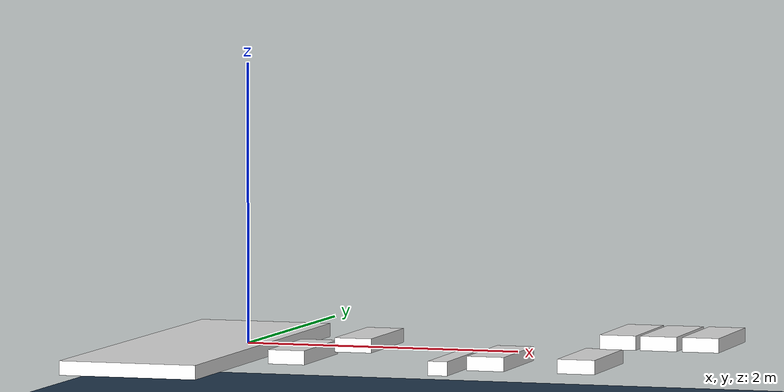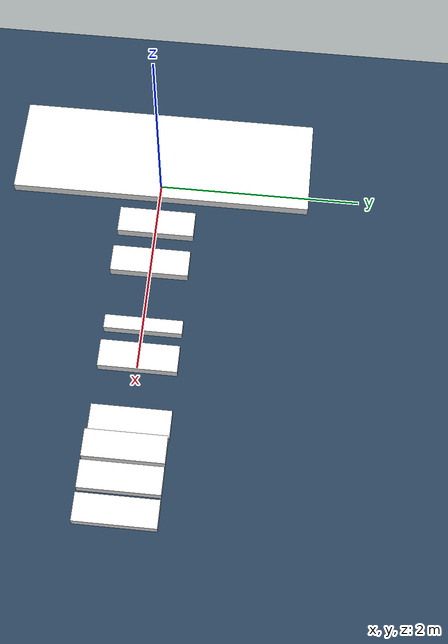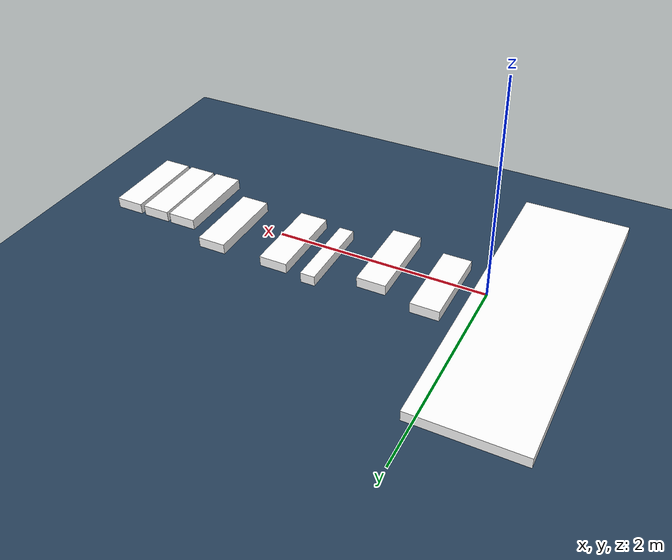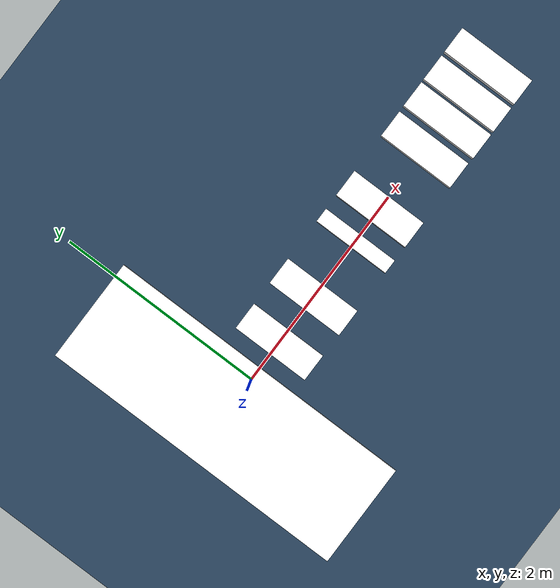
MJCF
<mujoco model="stepping_stones">
  <option gravity="0 0 -9.81"/>

  <statistic center="1.0 0.7 1.0" extent="0.8"/>

  <visual>
    <headlight diffuse="0.6 0.6 0.6" ambient="0.1 0.1 0.1" specular="0.9 0.9 0.9"/>
    <rgba haze="0.15 0.25 0.35 1"/>
    <global azimuth="-140" elevation="-20"/>
  </visual>

  <asset>
    <texture type="skybox" builtin="flat" rgb1="0 0 0" rgb2="0 0 0" width="512" height="3072"/>
    <texture type="2d" name="groundplane" builtin="checker" mark="edge" rgb1="0.2 0.3 0.4" rgb2="0.1 0.2 0.3" markrgb="0.8 0.8 0.8" width="300" height="300"/>
    <material name="groundplane" texture="groundplane" texuniform="true" texrepeat="5 5" reflectance="0.2"/>
    <material name="box_material" shininess="0.1" specular="0.5" roughness="0.3"/>
  </asset>

  <worldbody>
    <light pos="1 0 3.5" dir="0 0 -1" directional="true"/>

    <geom name="bottom" size="10  5 0.05" type="box" material="groundplane" pos= "0 0 -0.67" group="2"/>

    <geom name="startp" size="0.5 1.5 0.05" type="box" material="box_material" pos= "-0.375 0 -0.05" group="2"/>

    <geom name="stone1"     size="0.135 0.38 0.05" type="box" material="box_material" pos= "0.41   0 -0.05" group="2"/>
    <geom name="stone2"     size="0.135 0.38 0.05" type="box" material="box_material" pos= "0.905  0  0.05" group="2"/>
    <geom name="stone3"     size="0.07 0.38 0.05" type="box" material="box_material" pos= "1.525  0  -0.094" group="2"/>
    <geom name="stone4"     size="0.135 0.38 0.05" type="box" material="box_material" pos= "1.874  0  -0.05" group="2"/>
    <geom name="stone6"     size="0.135 0.38 0.05" type="box" material="box_material" pos= "2.529  0  -0.05" group="2"/>
    <geom name="stonemat0"  size="0.13 0.38 0.05" type="box" material="box_material" pos= "2.83  0  0.13" group="2"/>
    <geom name="stonemat1"  size="0.13 0.38 0.05" type="box" material="box_material" pos= "3.12  0  0.13" group="2"/>
    <geom name="stonemat2"  size="0.13 0.38 0.05" type="box" material="box_material" pos= "3.42  0  0.13" group="2"/>

  </worldbody>
</mujoco>
